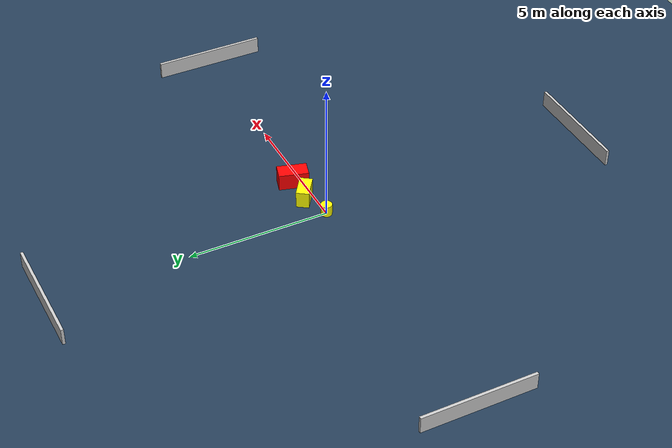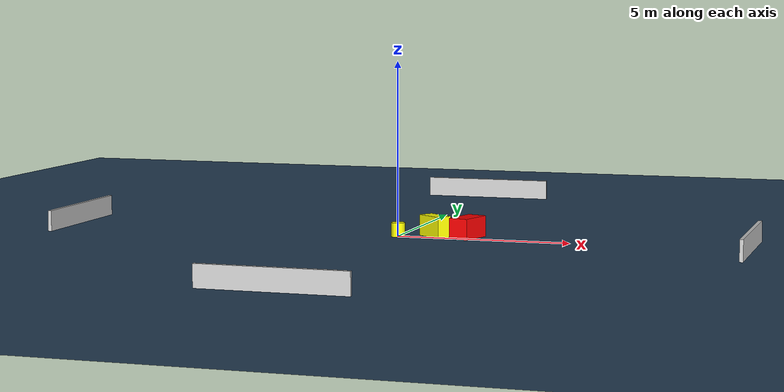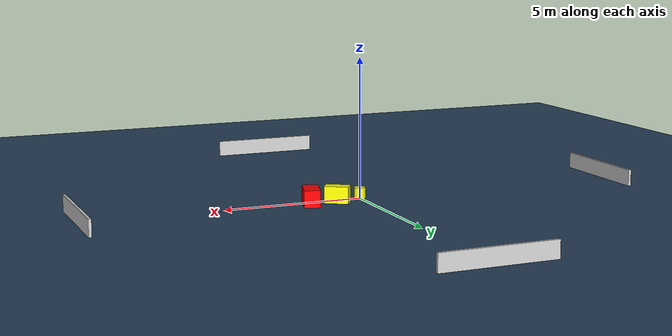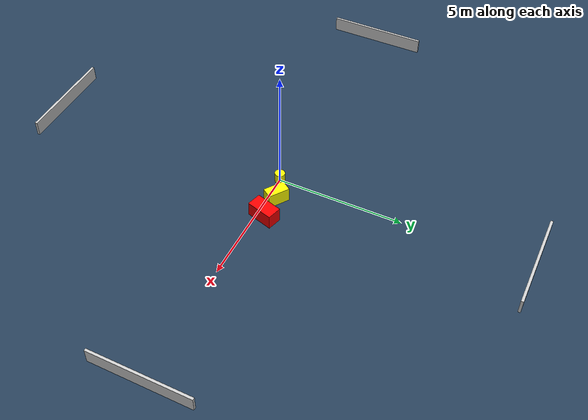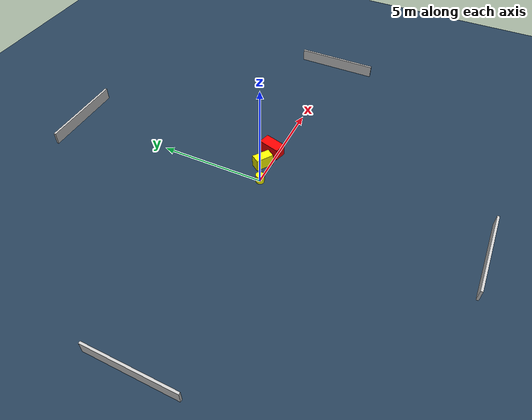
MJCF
<?xml version="1.0" ?>
<mujoco model="generated_environment">
  <option timestep="0.01" integrator="RK4" cone="elliptic"/>
  <default>
    <geom density="1"/>
  </default>
  <asset>
    <texture builtin="gradient" height="3072" name="skybox" rgb1="0.3 0.5 0.7" rgb2="0 0 0" type="skybox" width="512"/>
    <texture builtin="checker" height="300" name="groundplane" rgb1="0.2 0.3 0.4" rgb2="0.1 0.2 0.3" type="2d" width="300"/>
    <material name="groundplane" reflectance="0.2" texrepeat="5 5" texture="groundplane"/>
  </asset>
  <worldbody>
    <light dir="0 0 -1" directional="true" pos="0 0 1.5"/>
    <geom condim="3" friction="0.5 0.005 0.001" material="groundplane" name="floor" pos="0 0 0" size="0 0 0.05" type="plane"/>
    <body name="walls">
      <geom name="wall_1" condim="4" pos="-10.0 0.0 0.3" rgba="0.800000011920929 0.800000011920929 0.800000011920929 1.0" size="0.05 2.0 0.3" type="box"/>
      <geom name="wall_2" condim="4" pos="10.0 0.0 0.3" rgba="0.800000011920929 0.800000011920929 0.800000011920929 1.0" size="0.05 2.0 0.3" type="box"/>
      <geom name="wall_3" condim="4" pos="0.0 -10.0 0.3" rgba="0.800000011920929 0.800000011920929 0.800000011920929 1.0" size="2.0 0.05 0.3" type="box"/>
      <geom name="wall_4" condim="4" pos="0.0 10.0 0.3" rgba="0.800000011920929 0.800000011920929 0.800000011920929 1.0" size="2.0 0.05 0.3" type="box"/>
    </body>
    <body name="robot">
      <joint name="joint_x" type="slide" pos="0 0 0" axis="1 0 0"/>
      <joint name="joint_y" type="slide" pos="0 0 0" axis="0 1 0"/>
      <geom name="robot" type="cylinder" pos="0.0 0.0 0.2" size="0.2 0.2 0.0" mass="5.0" friction="1.0 0.005 0.0001" condim="4" rgba="1.0 1.0 0.0 1.0"/>
    </body>
    <body name="obstacle_1_movable">
      <geom name="obstacle_1_movable" condim="4" pos="0.9991803871263922 0.34399751190909517 0.3" euler="0 0 325.2724914581061" friction="0.0 0.005 0.001" rgba="1.0 1.0 0.0 1.0" size="0.42554692050403947 0.2241465748002905 0.3" type="box" mass="0.1"/>
      <joint type="free"/>
    </body>
    <body name="obstacle_2_static">
      <geom name="obstacle_2_static" condim="4" pos="1.9703474271877133 0.32028862054664 0.3" euler="0 0 163.75883608133964" friction="0.0 0.005 0.001" rgba="1.0 0.0 0.0 1.0" size="0.2838270973160989 0.5237115223884155 0.3" type="box"/>
    </body>
  </worldbody>
  <actuator>
    <motor name="actuator_x" joint="joint_x" gear="1" ctrlrange="-1 1"/>
    <motor name="actuator_y" joint="joint_y" gear="1" ctrlrange="-1 1"/>
  </actuator>
</mujoco>
